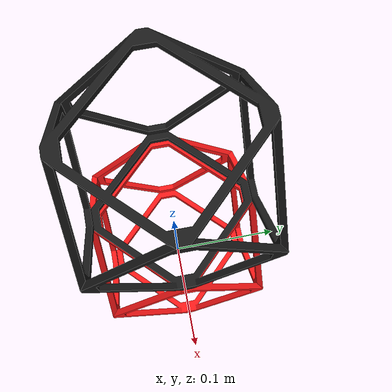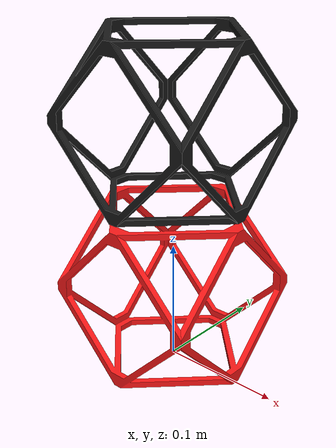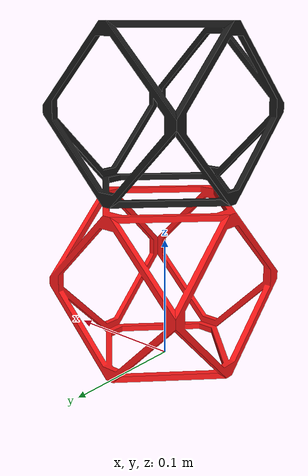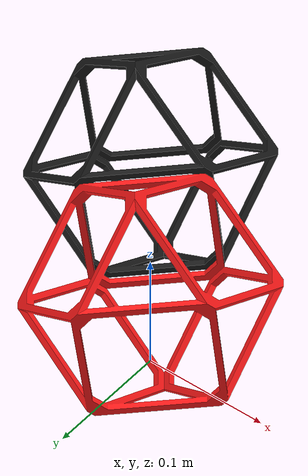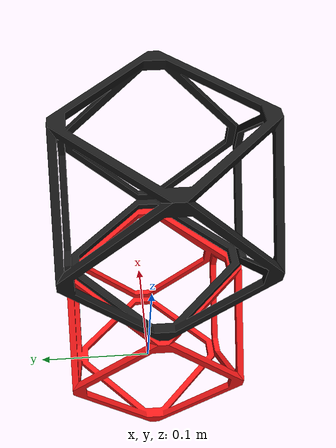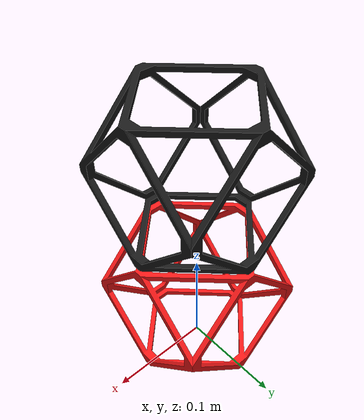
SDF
<?xml version="1.0"?>
<sdf version="1.10">
  <model name="robot">
    <pose>0 0 0 0 0 0</pose>

    <link name="vox1">
      <pose>0 0 0 0 0 0</pose>
      <visual name="body_visual">
        <geometry>
          <mesh>
            <uri>file:///home/lao/Documents/Masterarbeit/Simulation/ros2_ws/src/srrs_sim/stl/Voxel.stl</uri>
            <scale> 0.001 0.001 0.001 </scale>
          </mesh>
        </geometry>
        <material>
          <ambient>1 0.1 0.1 1</ambient>
          <diffuse>1 0.1 0.1 1</diffuse>
        </material>
      </visual>
      <collision name="body_collision">
        <geometry>
          <mesh>
            <uri>file:///home/lao/Documents/Masterarbeit/Simulation/ros2_ws/src/srrs_sim/stl/Voxel.stl</uri>
            <scale> 0.001 0.001 0.001 </scale>
          </mesh>
        </geometry>
      </collision>
    </link>

    <link name="vox2">
      <pose>0 0 0.141 0 0 0</pose>
      <visual name="body_visual">
        <geometry>
          <mesh>
            <uri>file:///home/lao/Documents/Masterarbeit/Simulation/ros2_ws/src/srrs_sim/stl/Voxel.stl</uri>
            <scale> 0.001 0.001 0.001 </scale>
          </mesh>
        </geometry>
        <material>
          <ambient>0.1 0.1 0.1 1</ambient>
          <diffuse>0.1 0.1 0.1 1</diffuse>
        </material>
      </visual>
      <collision name="body_collision">
        <geometry>
          <mesh>
            <uri>file:///home/lao/Documents/Masterarbeit/Simulation/ros2_ws/src/srrs_sim/stl/Voxel.stl</uri>
            <scale> 0.001 0.001 0.001 </scale>
          </mesh>
        </geometry>
      </collision>
    </link>

        <!-- Add a joint to connect the wheel to the base -->
    <joint name="revolute_joint" type="revolute">
      <parent>vox1</parent>
      <child>vox2</child>
      <pose>0 0 0.1 0 0 0</pose>
      <axis>
        <xyz>0 0 1</xyz>
        <limit>
          <lower>-3.14</lower>
          <upper>3.14</upper>
        </limit>
      </axis>
    </joint>

    <!-- Plugins -->

    <plugin
      filename="libgz_ros2_control-system.so"
      name="gz_ros2_control::GazeboSimROS2ControlPlugin">
      <parameters>/home/lao/Documents/Masterarbeit/Simulation/ros2_ws/src/srrs_sim/config/controller.yaml</parameters>
    </plugin>

    <ros2_control name="GazeboSystem" type="system">
      <hardware>
        <plugin>gz_ros2_control/GazeboSimSystem</plugin>
      </hardware>
      <joint name="revolute_joint">
        <command_topic>/revolute_joint/command</command_topic>
      </joint>
    </ros2_control>

  </model>
</sdf>
